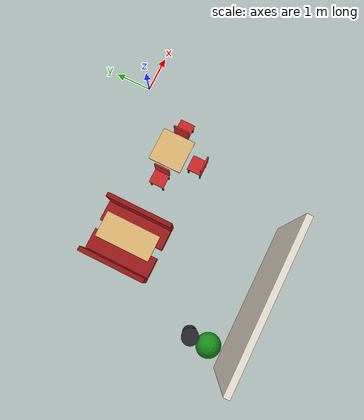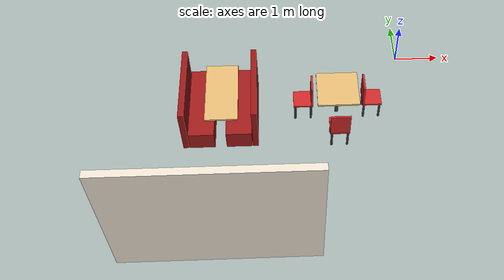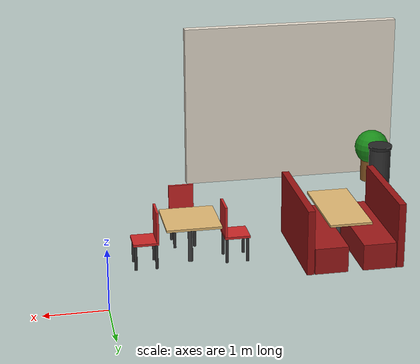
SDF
<sdf version="1.9">
 <world name="mcdonalds_cafe">
  <model name="wall_front_left">
   <static>true</static>
   <pose>-4 -5.0 1.5 0 0 0</pose>
   <link name="link">
    <collision name="col"><geometry><box><size>4 0.15 3.0</size></box></geometry></collision>
    <visual name="vis">
     <geometry><box><size>4 0.15 3.0</size></box></geometry>
     <material><ambient>0.92 0.88 0.82 1</ambient><diffuse>0.92 0.88 0.82 1</diffuse></material>
    </visual>
   </link>
  </model>
  <model name="booth_back_left_2">
   <static>true</static>
   <pose>-4.8 -1.5 0.55 0 0 0</pose>
   <link name="link">
    <collision name="col"><geometry><box><size>0.12 1.8 1.1</size></box></geometry></collision>
    <visual name="vis">
     <geometry><box><size>0.12 1.8 1.1</size></box></geometry>
     <material><ambient>0.6 0.08 0.08 1</ambient><diffuse>0.6 0.08 0.08 1</diffuse></material>
    </visual>
   </link>
  </model>
  <model name="booth_seat_left_2a">
   <static>true</static>
   <pose>-4.45 -1.5 0.22 0 0 0</pose>
   <link name="link">
    <collision name="col"><geometry><box><size>0.55 1.8 0.44</size></box></geometry></collision>
    <visual name="vis">
     <geometry><box><size>0.55 1.8 0.44</size></box></geometry>
     <material><ambient>0.62 0.1 0.1 1</ambient><diffuse>0.62 0.1 0.1 1</diffuse></material>
    </visual>
   </link>
  </model>
  <model name="booth_back_left_2b">
   <static>true</static>
   <pose>-3.3 -1.5 0.55 0 0 0</pose>
   <link name="link">
    <collision name="col"><geometry><box><size>0.12 1.8 1.1</size></box></geometry></collision>
    <visual name="vis">
     <geometry><box><size>0.12 1.8 1.1</size></box></geometry>
     <material><ambient>0.6 0.08 0.08 1</ambient><diffuse>0.6 0.08 0.08 1</diffuse></material>
    </visual>
   </link>
  </model>
  <model name="booth_seat_left_2b">
   <static>true</static>
   <pose>-3.65 -1.5 0.22 0 0 0</pose>
   <link name="link">
    <collision name="col"><geometry><box><size>0.55 1.8 0.44</size></box></geometry></collision>
    <visual name="vis">
     <geometry><box><size>0.55 1.8 0.44</size></box></geometry>
     <material><ambient>0.62 0.1 0.1 1</ambient><diffuse>0.62 0.1 0.1 1</diffuse></material>
    </visual>
   </link>
  </model>
  <model name="booth_table_2">
   <static>true</static>
   <pose>-4.0 -1.5 0.75 0 0 0</pose>
   <link name="link">
    <collision name="col"><geometry><box><size>0.7 1.5 0.04</size></box></geometry></collision>
    <visual name="vis">
     <geometry><box><size>0.7 1.5 0.04</size></box></geometry>
     <material>
      <ambient>0.88 0.72 0.45 1</ambient>
      <diffuse>0.88 0.72 0.45 1</diffuse>
      <specular>0.3 0.3 0.3 1</specular>
     </material>
    </visual>
   </link>
  </model>
  <model name="booth_table_2_leg">
   <static>true</static>
   <pose>-4.0 -1.5 0.38 0 0 0</pose>
   <link name="link">
    <collision name="col">
     <geometry><cylinder><radius>0.04</radius><length>0.75</length></cylinder></geometry>
    </collision>
    <visual name="vis">
     <geometry><cylinder><radius>0.04</radius><length>0.75</length></cylinder></geometry>
     <material><ambient>0.3 0.3 0.3 1</ambient><diffuse>0.3 0.3 0.3 1</diffuse></material>
    </visual>
   </link>
  </model>
  <model name="table_1">
   <static>true</static>
   <pose>-1.5 -1.5 0.75 0 0 0</pose>
   <link name="link">
    <collision name="col"><geometry><box><size>0.9 0.9 0.04</size></box></geometry></collision>
    <visual name="vis">
     <geometry><box><size>0.9 0.9 0.04</size></box></geometry>
     <material>
      <ambient>0.88 0.72 0.45 1</ambient>
      <diffuse>0.88 0.72 0.45 1</diffuse>
      <specular>0.3 0.3 0.3 1</specular>
     </material>
    </visual>
   </link>
  </model>
  <model name="table_1_leg">
   <static>true</static>
   <pose>-1.5 -1.5 0.38 0 0 0</pose>
   <link name="link">
    <collision name="col">
     <geometry><cylinder><radius>0.04</radius><length>0.75</length></cylinder></geometry>
    </collision>
    <visual name="vis">
     <geometry><cylinder><radius>0.04</radius><length>0.75</length></cylinder></geometry>
     <material><ambient>0.25 0.25 0.25 1</ambient><diffuse>0.25 0.25 0.25 1</diffuse></material>
    </visual>
   </link>
  </model>
  <model name="chair_t1_front">
   <static>true</static>
   <pose>-1.5 -2.25 0 0 0 0</pose>
   <link name="link">
    <visual name="seat">
     <pose>0 0 0.44 0 0 0</pose>
     <geometry><box><size>0.42 0.42 0.04</size></box></geometry>
     <material><ambient>0.8 0.15 0.15 1</ambient><diffuse>0.8 0.15 0.15 1</diffuse></material>
    </visual>
    <visual name="back">
     <pose>0 -0.19 0.72 0 0 0</pose>
     <geometry><box><size>0.42 0.04 0.52</size></box></geometry>
     <material><ambient>0.8 0.15 0.15 1</ambient><diffuse>0.8 0.15 0.15 1</diffuse></material>
    </visual>
    <visual name="leg_fl">
     <pose>0.17 0.17 0.22 0 0 0</pose>
     <geometry><cylinder><radius>0.025</radius><length>0.44</length></cylinder></geometry>
     <material><ambient>0.2 0.2 0.2 1</ambient><diffuse>0.2 0.2 0.2 1</diffuse></material>
    </visual>
    <visual name="leg_fr">
     <pose>-0.17 0.17 0.22 0 0 0</pose>
     <geometry><cylinder><radius>0.025</radius><length>0.44</length></cylinder></geometry>
     <material><ambient>0.2 0.2 0.2 1</ambient><diffuse>0.2 0.2 0.2 1</diffuse></material>
    </visual>
    <visual name="leg_bl">
     <pose>0.17 -0.17 0.22 0 0 0</pose>
     <geometry><cylinder><radius>0.025</radius><length>0.44</length></cylinder></geometry>
     <material><ambient>0.2 0.2 0.2 1</ambient><diffuse>0.2 0.2 0.2 1</diffuse></material>
    </visual>
    <visual name="leg_br">
     <pose>-0.17 -0.17 0.22 0 0 0</pose>
     <geometry><cylinder><radius>0.025</radius><length>0.44</length></cylinder></geometry>
     <material><ambient>0.2 0.2 0.2 1</ambient><diffuse>0.2 0.2 0.2 1</diffuse></material>
    </visual>
    <collision name="col">
     <pose>0 0 0.44 0 0 0</pose>
     <geometry><box><size>0.42 0.42 0.04</size></box></geometry>
    </collision>
   </link>
  </model>
  <model name="chair_t1_left">
   <static>true</static>
   <pose>-2.25 -1.5 0 0 0 1.5708</pose>
   <link name="link">
    <visual name="seat">
     <pose>0 0 0.44 0 0 0</pose>
     <geometry><box><size>0.42 0.42 0.04</size></box></geometry>
     <material><ambient>0.8 0.15 0.15 1</ambient><diffuse>0.8 0.15 0.15 1</diffuse></material>
    </visual>
    <visual name="back">
     <pose>0 -0.19 0.72 0 0 0</pose>
     <geometry><box><size>0.42 0.04 0.52</size></box></geometry>
     <material><ambient>0.8 0.15 0.15 1</ambient><diffuse>0.8 0.15 0.15 1</diffuse></material>
    </visual>
    <visual name="leg_fl">
     <pose>0.17 0.17 0.22 0 0 0</pose>
     <geometry><cylinder><radius>0.025</radius><length>0.44</length></cylinder></geometry>
     <material><ambient>0.2 0.2 0.2 1</ambient><diffuse>0.2 0.2 0.2 1</diffuse></material>
    </visual>
    <visual name="leg_fr">
     <pose>-0.17 0.17 0.22 0 0 0</pose>
     <geometry><cylinder><radius>0.025</radius><length>0.44</length></cylinder></geometry>
     <material><ambient>0.2 0.2 0.2 1</ambient><diffuse>0.2 0.2 0.2 1</diffuse></material>
    </visual>
    <visual name="leg_bl">
     <pose>0.17 -0.17 0.22 0 0 0</pose>
     <geometry><cylinder><radius>0.025</radius><length>0.44</length></cylinder></geometry>
     <material><ambient>0.2 0.2 0.2 1</ambient><diffuse>0.2 0.2 0.2 1</diffuse></material>
    </visual>
    <visual name="leg_br">
     <pose>-0.17 -0.17 0.22 0 0 0</pose>
     <geometry><cylinder><radius>0.025</radius><length>0.44</length></cylinder></geometry>
     <material><ambient>0.2 0.2 0.2 1</ambient><diffuse>0.2 0.2 0.2 1</diffuse></material>
    </visual>
    <collision name="col">
     <pose>0 0 0.44 0 0 0</pose>
     <geometry><box><size>0.42 0.42 0.04</size></box></geometry>
    </collision>
   </link>
  </model>
  <model name="chair_t1_right">
   <static>true</static>
   <pose>-0.75 -1.5 0 0 0 -1.5708</pose>
   <link name="link">
    <visual name="seat">
     <pose>0 0 0.44 0 0 0</pose>
     <geometry><box><size>0.42 0.42 0.04</size></box></geometry>
     <material><ambient>0.8 0.15 0.15 1</ambient><diffuse>0.8 0.15 0.15 1</diffuse></material>
    </visual>
    <visual name="back">
     <pose>0 -0.19 0.72 0 0 0</pose>
     <geometry><box><size>0.42 0.04 0.52</size></box></geometry>
     <material><ambient>0.8 0.15 0.15 1</ambient><diffuse>0.8 0.15 0.15 1</diffuse></material>
    </visual>
    <visual name="leg_fl">
     <pose>0.17 0.17 0.22 0 0 0</pose>
     <geometry><cylinder><radius>0.025</radius><length>0.44</length></cylinder></geometry>
     <material><ambient>0.2 0.2 0.2 1</ambient><diffuse>0.2 0.2 0.2 1</diffuse></material>
    </visual>
    <visual name="leg_fr">
     <pose>-0.17 0.17 0.22 0 0 0</pose>
     <geometry><cylinder><radius>0.025</radius><length>0.44</length></cylinder></geometry>
     <material><ambient>0.2 0.2 0.2 1</ambient><diffuse>0.2 0.2 0.2 1</diffuse></material>
    </visual>
    <visual name="leg_bl">
     <pose>0.17 -0.17 0.22 0 0 0</pose>
     <geometry><cylinder><radius>0.025</radius><length>0.44</length></cylinder></geometry>
     <material><ambient>0.2 0.2 0.2 1</ambient><diffuse>0.2 0.2 0.2 1</diffuse></material>
    </visual>
    <visual name="leg_br">
     <pose>-0.17 -0.17 0.22 0 0 0</pose>
     <geometry><cylinder><radius>0.025</radius><length>0.44</length></cylinder></geometry>
     <material><ambient>0.2 0.2 0.2 1</ambient><diffuse>0.2 0.2 0.2 1</diffuse></material>
    </visual>
    <collision name="col">
     <pose>0 0 0.44 0 0 0</pose>
     <geometry><box><size>0.42 0.42 0.04</size></box></geometry>
    </collision>
   </link>
  </model>
  <model name="trash_bin">
   <static>true</static>
   <pose>-5.5 -4.0 0.4 0 0 0</pose>
   <link name="link">
    <collision name="col">
     <geometry><cylinder><radius>0.2</radius><length>0.8</length></cylinder></geometry>
    </collision>
    <visual name="bin_body">
     <geometry><cylinder><radius>0.2</radius><length>0.8</length></cylinder></geometry>
     <material><ambient>0.2 0.2 0.2 1</ambient><diffuse>0.2 0.2 0.2 1</diffuse></material>
    </visual>
    <visual name="bin_lid">
     <pose>0 0 0.43 0 0 0</pose>
     <geometry><cylinder><radius>0.22</radius><length>0.06</length></cylinder></geometry>
     <material><ambient>0.15 0.15 0.15 1</ambient><diffuse>0.15 0.15 0.15 1</diffuse></material>
    </visual>
   </link>
  </model>
  <model name="plant_pot_2">
   <static>true</static>
   <pose>-5.5 -4.5 0.25 0 0 0</pose>
   <link name="link">
    <collision name="col">
     <geometry><cylinder><radius>0.2</radius><length>0.5</length></cylinder></geometry>
    </collision>
    <visual name="pot">
     <geometry><cylinder><radius>0.2</radius><length>0.5</length></cylinder></geometry>
     <material><ambient>0.55 0.35 0.15 1</ambient><diffuse>0.55 0.35 0.15 1</diffuse></material>
    </visual>
    <visual name="plant">
     <pose>0 0 0.4 0 0 0</pose>
     <geometry><sphere><radius>0.32</radius></sphere></geometry>
     <material><ambient>0.1 0.55 0.1 1</ambient><diffuse>0.1 0.55 0.1 1</diffuse></material>
    </visual>
   </link>
  </model>
 </world>
</sdf>
